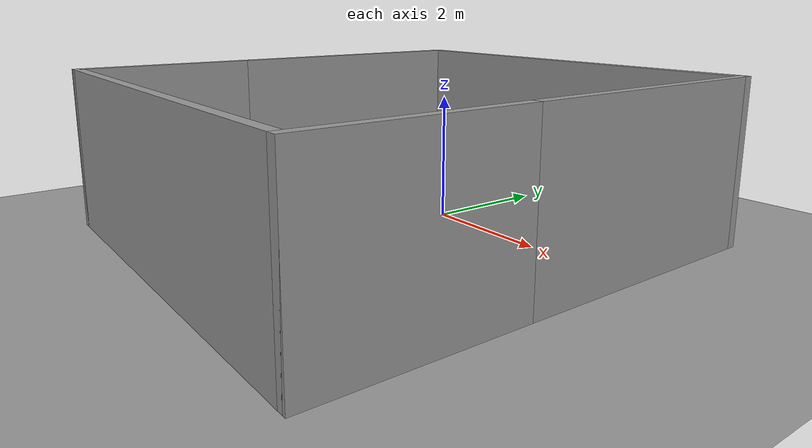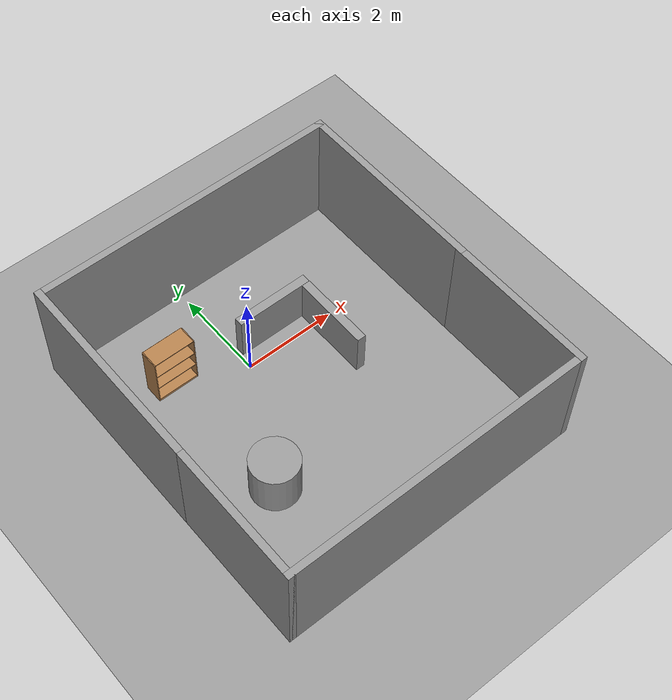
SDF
<sdf version="1.6">
 <world name="default">
  <light name="sun" type="directional">
   <pose>0 0 10 0 -0 0</pose>
   <diffuse>0.8 0.8 0.8 1</diffuse>
   <specular>0.2 0.2 0.2 1</specular>
   <attenuation>
    <range>1000</range>
    <constant>0.9</constant>
    <linear>0.01</linear>
    <quadratic>0.001</quadratic>
   </attenuation>
   <direction>0.5 0.1 -0.9</direction>
  </light>
  <scene><ambient>0.4 0.4 0.4 1</ambient><background>0.7 0.7 0.7 1</background><shadows>1</shadows></scene>
  <physics name="default_physics" default="0" type="ode">
   <max_step_size>0.01</max_step_size>
   <real_time_factor>1</real_time_factor>
   <real_time_update_rate>100</real_time_update_rate>
  </physics>
  <model name="bookshelf">
   <static>1</static>
   <link name="link">
    <inertial><mass>1</mass></inertial>
    <collision name="back">
     <pose>0 0.005 0.6 0 -0 0</pose>
     <geometry><box><size>0.9 0.01 1.2</size></box></geometry>
    </collision>
    <visual name="visual1">
     <pose>0 0.005 0.6 0 -0 0</pose>
     <geometry><box><size>0.9 0.01 1.2</size></box></geometry>
     <material>
      <script><uri>file://media/materials/scripts/gazebo.material</uri><name>Gazebo/Wood</name></script>
     </material>
    </visual>
    <collision name="left_side">
     <pose>0.45 -0.195 0.6 0 -0 0</pose>
     <geometry><box><size>0.02 0.4 1.2</size></box></geometry>
    </collision>
    <visual name="visual2">
     <pose>0.45 -0.195 0.6 0 -0 0</pose>
     <geometry><box><size>0.02 0.4 1.2</size></box></geometry>
     <material>
      <script><uri>file://media/materials/scripts/gazebo.material</uri><name>Gazebo/Wood</name></script>
     </material>
    </visual>
    <collision name="right_side">
     <pose>-0.45 -0.195 0.6 0 -0 0</pose>
     <geometry><box><size>0.02 0.4 1.2</size></box></geometry>
    </collision>
    <visual name="visual3">
     <pose>-0.45 -0.195 0.6 0 -0 0</pose>
     <geometry><box><size>0.02 0.4 1.2</size></box></geometry>
     <material>
      <script><uri>file://media/materials/scripts/gazebo.material</uri><name>Gazebo/Wood</name></script>
     </material>
    </visual>
    <collision name="bottom">
     <pose>0 -0.195 0.03 0 -0 0</pose>
     <geometry><box><size>0.88 0.4 0.06</size></box></geometry>
    </collision>
    <visual name="visual4">
     <pose>0 -0.195 0.03 0 -0 0</pose>
     <geometry><box><size>0.88 0.4 0.06</size></box></geometry>
     <material>
      <script><uri>file://media/materials/scripts/gazebo.material</uri><name>Gazebo/Wood</name></script>
     </material>
    </visual>
    <collision name="top">
     <pose>0 -0.195 1.19 0 -0 0</pose>
     <geometry><box><size>0.88 0.4 0.02</size></box></geometry>
    </collision>
    <visual name="visual5">
     <pose>0 -0.195 1.19 0 -0 0</pose>
     <geometry><box><size>0.88 0.4 0.02</size></box></geometry>
     <material>
      <script><uri>file://media/materials/scripts/gazebo.material</uri><name>Gazebo/Wood</name></script>
     </material>
    </visual>
    <collision name="low_shelf">
     <pose>0 -0.195 0.43 0 -0 0</pose>
     <geometry><box><size>0.88 0.4 0.02</size></box></geometry>
    </collision>
    <visual name="visual6">
     <pose>0 -0.195 0.43 0 -0 0</pose>
     <geometry><box><size>0.88 0.4 0.02</size></box></geometry>
     <material>
      <script><uri>file://media/materials/scripts/gazebo.material</uri><name>Gazebo/Wood</name></script>
     </material>
    </visual>
    <collision name="high_shelf">
     <pose>0 -0.195 0.8 0 -0 0</pose>
     <geometry><box><size>0.88 0.4 0.02</size></box></geometry>
    </collision>
    <visual name="visual7">
     <pose>0 -0.195 0.8 0 -0 0</pose>
     <geometry><box><size>0.88 0.4 0.02</size></box></geometry>
     <material>
      <script><uri>file://media/materials/scripts/gazebo.material</uri><name>Gazebo/Wood</name></script>
     </material>
    </visual>
    <velocity_decay><linear>0</linear><angular>0</angular></velocity_decay>
   </link>
   <pose>-1.37437 0.869986 0 0 -0 0</pose>
  </model>
  <model name="ground_plane_0">
   <static>1</static>
   <link name="link">
    <collision name="collision">
     <geometry><plane><normal>0 0 1</normal><size>100 100</size></plane></geometry>
     <surface><friction><ode><mu>100</mu><mu2>50</mu2></ode></friction></surface>
    </collision>
    <visual name="visual">
     <cast_shadows>0</cast_shadows>
     <geometry><plane><normal>0 0 1</normal><size>100 100</size></plane></geometry>
     <material>
      <script><uri>file://media/materials/scripts/gazebo.material</uri><name>Gazebo/Grey</name></script>
     </material>
    </visual>
    <velocity_decay><linear>0</linear><angular>0</angular></velocity_decay>
   </link>
   <pose>0.497681 0 0 0 -0 0</pose>
  </model>
  <model name="unit_cylinder_1">
   <pose>-1.28442 -2.40481 0.49912 0 0 -1e-06</pose>
   <link name="link">
    <inertial>
     <mass>1</mass>
     <inertia><ixx>1</ixx><ixy>0</ixy><ixz>0</ixz><iyy>1</iyy><iyz>0</iyz><izz>1</izz></inertia>
    </inertial>
    <collision name="collision">
     <geometry><cylinder><radius>0.5</radius><length>1</length></cylinder></geometry>
    </collision>
    <visual name="visual">
     <geometry><cylinder><radius>0.5</radius><length>1</length></cylinder></geometry>
     <material>
      <script><uri>file://media/materials/scripts/gazebo.material</uri><name>Gazebo/Grey</name></script>
     </material>
    </visual>
    <velocity_decay><linear>0</linear><angular>0</angular></velocity_decay>
   </link>
   <static>0</static>
  </model>
  <gravity>0 0 -9.8</gravity>
  <magnetic_field>6e-06 2.3e-05 -4.2e-05</magnetic_field>
  <atmosphere type="adiabatic"/>
  <spherical_coordinates>
   <surface_model>EARTH_WGS84</surface_model>
   <latitude_deg>0</latitude_deg>
   <longitude_deg>0</longitude_deg>
   <elevation>0</elevation>
   <heading_deg>0</heading_deg>
  </spherical_coordinates>
  <model name="Untitled">
   <pose>0.37 -1.28 0 0 -0 0</pose>
   <link name="Wall_0">
    <collision name="Wall_0_Collision">
     <geometry><box><size>3 0.15 2.5</size></box></geometry>
     <pose>0 0 1.25 0 -0 0</pose>
    </collision>
    <visual name="Wall_0_Visual">
     <pose>0 0 1.25 0 -0 0</pose>
     <geometry><box><size>3 0.15 2.5</size></box></geometry>
     <material>
      <script><uri>file://media/materials/scripts/gazebo.material</uri><name>Gazebo/Grey</name></script>
      <ambient>1 1 1 1</ambient>
     </material>
    </visual>
    <pose>-3.3 -2.175 0 0 0 -1.5708</pose>
   </link>
   <link name="Wall_1">
    <collision name="Wall_1_Collision">
     <geometry><box><size>6.75 0.15 2.5</size></box></geometry>
     <pose>0 0 1.25 0 -0 0</pose>
    </collision>
    <visual name="Wall_1_Visual">
     <pose>0 0 1.25 0 -0 0</pose>
     <geometry><box><size>6.75 0.15 2.5</size></box></geometry>
     <material>
      <script><uri>file://media/materials/scripts/gazebo.material</uri><name>Gazebo/Grey</name></script>
      <ambient>1 1 1 1</ambient>
     </material>
    </visual>
    <pose>0 -3.6 0 0 -0 0</pose>
   </link>
   <link name="Wall_2">
    <collision name="Wall_2_Collision">
     <geometry><box><size>3.25 0.15 2.5</size></box></geometry>
     <pose>0 0 1.25 0 -0 0</pose>
    </collision>
    <visual name="Wall_2_Visual">
     <pose>0 0 1.25 0 -0 0</pose>
     <geometry><box><size>3.25 0.15 2.5</size></box></geometry>
     <material>
      <script><uri>file://media/materials/scripts/gazebo.material</uri><name>Gazebo/Grey</name></script>
      <ambient>1 1 1 1</ambient>
     </material>
    </visual>
    <pose>3.3 -2.05 0 0 -0 1.5708</pose>
   </link>
   <link name="Wall_4">
    <collision name="Wall_4_Collision">
     <geometry><box><size>4.25 0.15 2.5</size></box></geometry>
     <pose>0 0 1.25 0 -0 0</pose>
    </collision>
    <visual name="Wall_4_Visual">
     <pose>0 0 1.25 0 -0 0</pose>
     <geometry><box><size>4.25 0.15 2.5</size></box></geometry>
     <material>
      <script><uri>file://media/materials/scripts/gazebo.material</uri><name>Gazebo/Grey</name></script>
      <ambient>1 1 1 1</ambient>
     </material>
    </visual>
    <pose>3.3 1.55 0 0 -0 1.5708</pose>
   </link>
   <link name="Wall_5">
    <collision name="Wall_5_Collision">
     <geometry><box><size>6.75 0.15 2.5</size></box></geometry>
     <pose>0 0 1.25 0 -0 0</pose>
    </collision>
    <visual name="Wall_5_Visual">
     <pose>0 0 1.25 0 -0 0</pose>
     <geometry><box><size>6.75 0.15 2.5</size></box></geometry>
     <material>
      <script><uri>file://media/materials/scripts/gazebo.material</uri><name>Gazebo/Grey</name></script>
      <ambient>1 1 1 1</ambient>
     </material>
    </visual>
    <pose>0 3.6 0 0 -0 3.14159</pose>
   </link>
   <link name="Wall_7">
    <collision name="Wall_7_Collision">
     <geometry><box><size>4.5 0.15 2.5</size></box></geometry>
     <pose>0 0 1.25 0 -0 0</pose>
    </collision>
    <visual name="Wall_7_Visual">
     <pose>0 0 1.25 0 -0 0</pose>
     <geometry><box><size>4.5 0.15 2.5</size></box></geometry>
     <material>
      <script><uri>file://media/materials/scripts/gazebo.material</uri><name>Gazebo/Grey</name></script>
      <ambient>1 1 1 1</ambient>
     </material>
    </visual>
    <pose>-3.3 1.425 0 0 -0 1.5708</pose>
   </link>
   <static>1</static>
  </model>
  <model name="unit_box_0_2">
   <pose>1.6644 -0.530872 0.499096 -0.001076 4.9e-05 -0.00133</pose>
   <link name="link">
    <inertial>
     <mass>1</mass>
     <inertia>
      <ixx>0.166667</ixx>
      <ixy>0</ixy>
      <ixz>0</ixz>
      <iyy>0.166667</iyy>
      <iyz>0</iyz>
      <izz>0.166667</izz>
     </inertia>
    </inertial>
    <collision name="collision"><geometry><box><size>0.193166 1.6864 1</size></box></geometry></collision>
    <visual name="visual">
     <geometry><box><size>0.193166 1.6864 1</size></box></geometry>
     <material>
      <script><name>Gazebo/Grey</name><uri>file://media/materials/scripts/gazebo.material</uri></script>
     </material>
    </visual>
    <kinematic>1</kinematic>
   </link>
  </model>
  <model name="unit_box_0_2_clone">
   <pose>0.916958 0.41207 0.499096 5.1e-05 0.001076 1.5716</pose>
   <link name="link">
    <inertial>
     <mass>1</mass>
     <inertia>
      <ixx>0.166667</ixx>
      <ixy>0</ixy>
      <ixz>0</ixz>
      <iyy>0.166667</iyy>
      <iyz>0</iyz>
      <izz>0.166667</izz>
     </inertia>
    </inertial>
    <collision name="collision"><geometry><box><size>0.193166 1.68641 1</size></box></geometry></collision>
    <visual name="visual">
     <geometry><box><size>0.193166 1.68641 1</size></box></geometry>
     <material>
      <script><name>Gazebo/Grey</name><uri>file://media/materials/scripts/gazebo.material</uri></script>
     </material>
    </visual>
    <kinematic>1</kinematic>
   </link>
  </model>
 </world>
</sdf>
